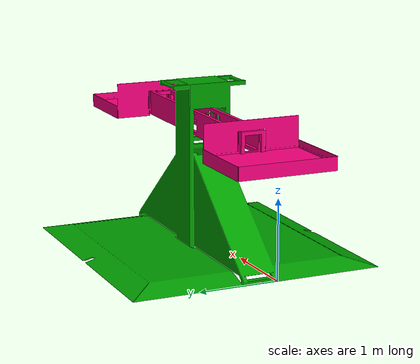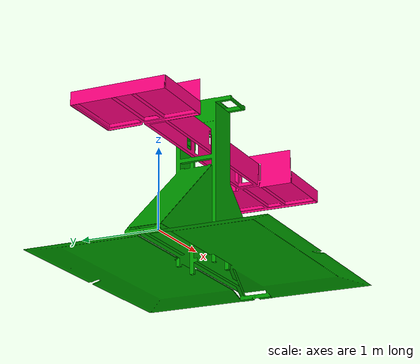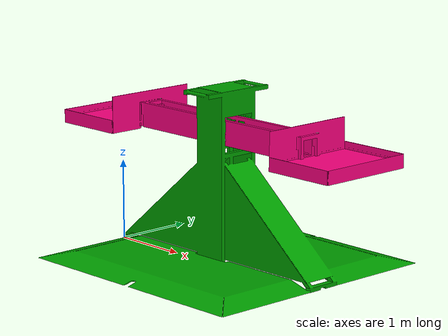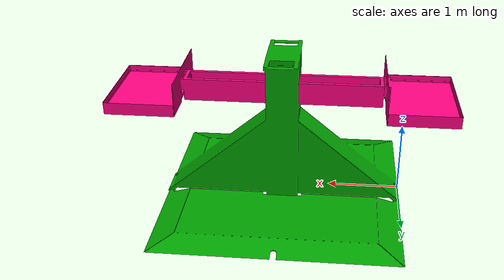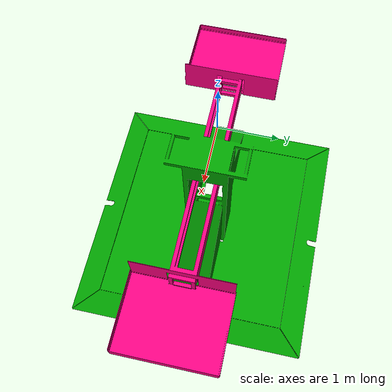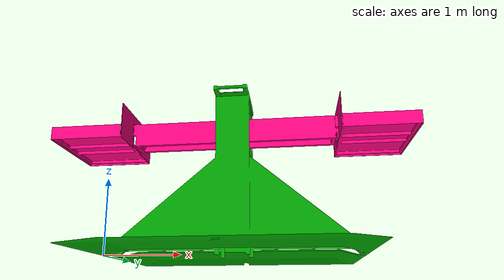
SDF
<?xml version="1.0" encoding="utf-8"?>
<sdf version="1.5">
  <model name="Scale">
    <pose>0 0 -1.21310977876712E-19 0 0 0</pose>
    <link name="ScaleBase">
      <gravity>1</gravity>
      <self_collide>0</self_collide>
      <pose>1.64620715512013 0.218437394875832 0.385903951485867 1.5707963267949 -8.88178419700125E-16 -1.5707963267949</pose>
      <must_be_base_link>1</must_be_base_link>
      <velocity_decay>
        <linear>0</linear>
        <angular>0</angular>
      </velocity_decay>
      <inertial>
        <mass>2001.03145742486</mass>
        <pose>0 0 0 0 0 0</pose>
        <inertia>
          <ixx>250.1847798276473</ixx>
          <ixy>0.00210790674326739</ixy>
          <ixz>110.3860287376259</ixz>
          <iyy>720.9963221587105</iyy>
          <iyz>20.17805590048165E-07</iyz>
          <izz>570.0320707385587</izz>
        </inertia>
      </inertial>
      <collision name="ScaleBase_collision">
        <pose>0.00253739487582736 -0.388742698481816 1.62388813618477E-08 0 0 0</pose>
        <geometry>
          <mesh>
            <scale>1 1 1</scale>
            <uri>model://Scale/meshes/ScaleBase_col.STL</uri>
          </mesh>
        </geometry>
        <surface>
          <contact>
            <ode />
          </contact>
          <friction>
            <ode>
              <mu>1</mu>
              <mu2>1</mu2>
            </ode>
          </friction>
        </surface>
      </collision>
      <visual name="ScaleBase_visual">
        <pose>0.00253739487582736 -0.388742698481816 1.62388813618477E-08 0 0 0</pose>
        <material>
          <ambient>0 0.627450980392157 0 1</ambient>
          <diffuse>0 0.627450980392157 0 1</diffuse>
        </material>
        <geometry>
          <mesh>
            <scale>1 1 1</scale>
            <uri>model://Scale/meshes/ScaleBase.STL</uri>
          </mesh>
        </geometry>
      </visual>
    </link>
    <joint name="ScaleBase-World" type="fixed">
      <parent>world</parent>
      <child>ScaleBase</child>
   </joint>

    <link name="ScaleArm">
      <gravity>1</gravity>
      <self_collide>0</self_collide>
      <pose>1.64700336504853 0.213606627472934 1.57887880341548 1.5707963267949 -8.88178419700125E-16 -1.5707963267949</pose>
      <must_be_base_link>0</must_be_base_link>
      <velocity_decay>
        <linear>0</linear>
        <angular>0</angular>
      </velocity_decay>
      <inertial>
        <mass>67.1881352871921</mass>
        <pose>0 0 0 0 0 0</pose>
        <inertia>
          <ixx>122.288700229871</ixx>
          <ixy>0.000816148995356533</ixy>
          <ixz>3.02941853255745E-07</ixz>
          <iyy>124.108034329393</iyy>
          <iyz>0.164394634252998</iyz>
          <izz>2.02882625831945</izz>
        </inertia>
      </inertial>
      <collision name="ScaleArm_collision">
        <pose>-0.00229337252707149 -1.58171755041143 0.000796226167280495 0 0 0</pose>
        <geometry>
          <mesh>
            <scale>1 1 1</scale>
            <uri>model://Scale/meshes/ScaleArm_col.STL</uri>
          </mesh>
        </geometry>
        <surface>
          <contact>
            <ode />
          </contact>
          <friction>
            <ode>
              <mu>1</mu>
              <mu2>1</mu2>
            </ode>
          </friction>
        </surface>
      </collision>
      <visual name="ScaleArm_visual">
        <pose>-0.00229337252707149 -1.58171755041143 0.000796226167280495 0 0 0</pose>
        <material>
          <ambient>1 0 0.501960784313725 1</ambient>
          <diffuse>1 0 0.501960784313725 1</diffuse>
        </material>
        <geometry>
          <mesh>
            <scale>1 1 1</scale>
            <uri>model://Scale/meshes/ScaleArm.STL</uri>
          </mesh>
        </geometry>
      </visual>
    </link>
    <joint name="ScaleBase-ScaleArm" type="revolute">
      <parent>ScaleBase</parent>
      <child>ScaleArm</child>
      <pose>2.08166817117217E-17 0.131052303592442 0.000176481707091244 0 0 0</pose>
      <axis>
        <xyz>1 0 3.88581826685001E-16</xyz>
        <dynamics>
          <damping>1</damping>
          <friction>1</friction>
        </dynamics>
        <limit>
          <upper>0.1</upper>
          <lower>-0.10</lower>
          <effort>1</effort>
        </limit>
      </axis>
    </joint>
  </model>
</sdf>
